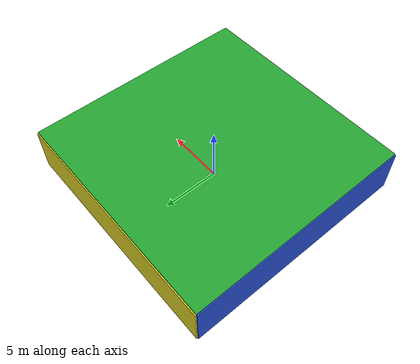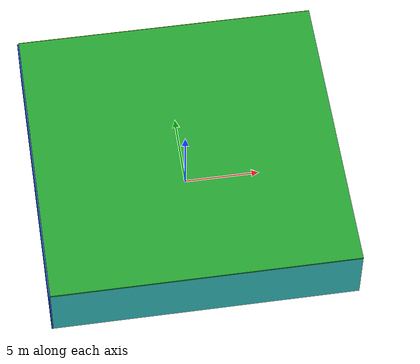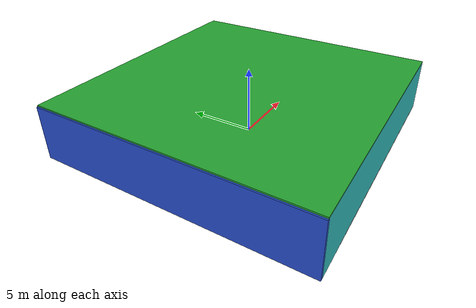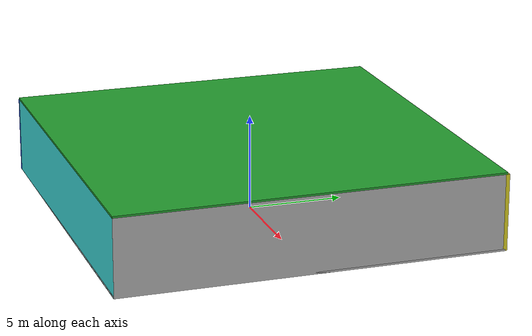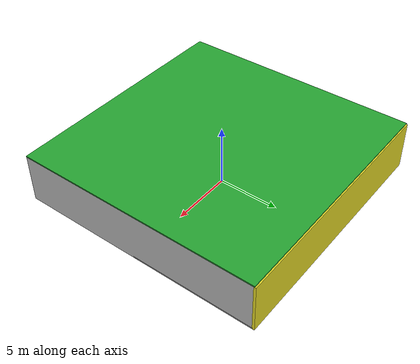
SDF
<sdf version="1.4">
 <world name="default">
  <physics type="ode">
   <max_step_size>0.001</max_step_size>
   <real_time_factor>1</real_time_factor>
   <real_time_update_rate>1000</real_time_update_rate>
   <gravity>0 0 -9.8</gravity>
  </physics>
  <scene><ambient>0.4 0.4 0.4 1</ambient><background>0.7 0.7 0.7 1</background><shadows>1</shadows></scene>
  <model name="Surrounding">
   <static>1</static>
   <link name="Ceiling">
    <collision name="Ceiling_Collision"><geometry><box><size>20 20 0.1</size></box></geometry></collision>
    <visual name="Ceiling_Visual">
     <geometry><box><size>20 20 0.1</size></box></geometry>
     <material>
      <script><uri>file://media/materials/scripts/gazebo.material</uri><name>Gazebo/Green</name></script>
     </material>
    </visual>
    <pose>0 0 4.05 0 0 0</pose>
   </link>
   <link name="Wall_South">
    <collision name="Wall_South_Collision">
     <geometry><box><size>20 0 4</size></box></geometry>
     <pose>0 0 2 0 -0 0</pose>
    </collision>
    <visual name="Wall_South_Visual">
     <pose>0 0 2 0 -0 0</pose>
     <geometry><box><size>20 0 4</size></box></geometry>
     <material>
      <script><uri>file://media/materials/scripts/gazebo.material</uri><name>Gazebo/TurquoiseGlow</name></script>
     </material>
    </visual>
    <velocity_decay><linear>0</linear><angular>0</angular></velocity_decay>
    <pose>0 -10 0 0 -0 0</pose>
   </link>
   <link name="Wall_East">
    <collision name="Wall_21_Collision">
     <geometry><box><size>20 0 4</size></box></geometry>
     <pose>0 0 2 0 -0 0</pose>
    </collision>
    <visual name="Wall_21_Visual">
     <pose>0 0 2 0 -0 0</pose>
     <geometry><box><size>20 0 4</size></box></geometry>
     <material>
      <script><uri>file://media/materials/scripts/gazebo.material</uri><name>Gazebo/PioneerBody</name></script>
     </material>
    </visual>
    <velocity_decay><linear>0</linear><angular>0</angular></velocity_decay>
    <pose>10 0 0 0 -0 1.5708</pose>
   </link>
   <link name="Wall_North">
    <collision name="Wall_22_Collision">
     <geometry><box><size>20 0.2 4</size></box></geometry>
     <pose>0 0 2 0 -0 0</pose>
    </collision>
    <visual name="Wall_22_Visual">
     <pose>0 0 2 0 -0 0</pose>
     <geometry><box><size>20 0.2 4</size></box></geometry>
     <material>
      <script><uri>file://media/materials/scripts/gazebo.material</uri><name>Gazebo/YellowGlow</name></script>
     </material>
    </visual>
    <velocity_decay><linear>0</linear><angular>0</angular></velocity_decay>
    <pose>0 10 0 0 -0 0</pose>
   </link>
   <link name="Wall_West">
    <collision name="Wall_23_Collision">
     <geometry><box><size>20 0.2 4</size></box></geometry>
     <pose>0 0 2 0 -0 0</pose>
    </collision>
    <visual name="Wall_23_Visual">
     <pose>0 0 2 0 -0 0</pose>
     <geometry><box><size>20 0.2 4</size></box></geometry>
     <material>
      <script><uri>file://media/materials/scripts/gazebo.material</uri><name>Gazebo/Blue</name></script>
     </material>
    </visual>
    <velocity_decay><linear>0</linear><angular>0</angular></velocity_decay>
    <pose>-10 0 0 0 0 -1.5708</pose>
   </link>
   <link name="Ground_link">
    <collision name="collision">
     <pose>0 0 .05 0 -0 0</pose>
     <geometry><box><size>20 20 0.1</size></box></geometry>
    </collision>
    <visual name="visual">
     <pose>0 0 .05 0 -0 0</pose>
     <geometry><box><size>20 20 0.1</size></box></geometry>
     <material>
      <script><uri>file://media/materials/scripts/gazebo.material</uri><name>Gazebo/LightOn</name></script>
     </material>
    </visual>
   </link>
   <static>1</static>
  </model>
  <spherical_coordinates>
   <surface_model>EARTH_WGS84</surface_model>
   <latitude_deg>0</latitude_deg>
   <longitude_deg>0</longitude_deg>
   <elevation>0</elevation>
   <heading_deg>0</heading_deg>
  </spherical_coordinates>
  <light name="lightball_0" type="diffuse">
   <diffuse>0.8 0.8 0.8 1</diffuse>
   <specular>0.2 0.2 0.2 1</specular>
   <attenuation>
    <range>100</range>
    <constant>0.7</constant>
    <linear>0.01</linear>
    <quadratic>0.001</quadratic>
   </attenuation>
   <direction>-0.5 0.1 -0.9</direction>
   <pose>8.87913386273 -5.4456801299 3.31941063661 0 0 0</pose>
  </light>
  <light name="lightball_1" type="diffuse">
   <diffuse>0.8 0.8 0.8 1</diffuse>
   <specular>0.2 0.2 0.2 1</specular>
   <attenuation>
    <range>100</range>
    <constant>0.7</constant>
    <linear>0.01</linear>
    <quadratic>0.001</quadratic>
   </attenuation>
   <direction>-0.5 0.1 -0.9</direction>
   <pose>0.792437428599 -3.08320103999 3.23044946112 0 0 0</pose>
  </light>
  <light name="lightball_2" type="diffuse">
   <diffuse>0.8 0.8 0.8 1</diffuse>
   <specular>0.2 0.2 0.2 1</specular>
   <attenuation>
    <range>100</range>
    <constant>0.7</constant>
    <linear>0.01</linear>
    <quadratic>0.001</quadratic>
   </attenuation>
   <direction>-0.5 0.1 -0.9</direction>
   <pose>0.936320937527 -7.09101163712 1.76761406032 0 0 0</pose>
  </light>
  <light name="lightball_3" type="diffuse">
   <diffuse>0.8 0.8 0.8 1</diffuse>
   <specular>0.2 0.2 0.2 1</specular>
   <attenuation>
    <range>100</range>
    <constant>0.7</constant>
    <linear>0.01</linear>
    <quadratic>0.001</quadratic>
   </attenuation>
   <direction>-0.5 0.1 -0.9</direction>
   <pose>0.315114760712 1.23465147337 3.83477372108 0 0 0</pose>
  </light>
  <light name="lightball_4" type="diffuse">
   <diffuse>0.8 0.8 0.8 1</diffuse>
   <specular>0.2 0.2 0.2 1</specular>
   <attenuation>
    <range>100</range>
    <constant>0.7</constant>
    <linear>0.01</linear>
    <quadratic>0.001</quadratic>
   </attenuation>
   <direction>-0.5 0.1 -0.9</direction>
   <pose>7.37589062109 4.83047110266 1.2376219998 0 0 0</pose>
  </light>
  <light name="lightball_5" type="diffuse">
   <diffuse>0.8 0.8 0.8 1</diffuse>
   <specular>0.2 0.2 0.2 1</specular>
   <attenuation>
    <range>100</range>
    <constant>0.7</constant>
    <linear>0.01</linear>
    <quadratic>0.001</quadratic>
   </attenuation>
   <direction>-0.5 0.1 -0.9</direction>
   <pose>-9.08674061554 -9.86673033157 3.37159300555 0 0 0</pose>
  </light>
  <light name="lightball_6" type="diffuse">
   <diffuse>0.8 0.8 0.8 1</diffuse>
   <specular>0.2 0.2 0.2 1</specular>
   <attenuation>
    <range>100</range>
    <constant>0.7</constant>
    <linear>0.01</linear>
    <quadratic>0.001</quadratic>
   </attenuation>
   <direction>-0.5 0.1 -0.9</direction>
   <pose>1.68372091761 8.89027948104 2.71610337922 0 0 0</pose>
  </light>
  <light name="lightball_7" type="diffuse">
   <diffuse>0.8 0.8 0.8 1</diffuse>
   <specular>0.2 0.2 0.2 1</specular>
   <attenuation>
    <range>100</range>
    <constant>0.7</constant>
    <linear>0.01</linear>
    <quadratic>0.001</quadratic>
   </attenuation>
   <direction>-0.5 0.1 -0.9</direction>
   <pose>2.69003780809 -2.48718388497 0.979983776262 0 0 0</pose>
  </light>
  <include><uri>model://cabinet</uri><pose>-5.12850684055 3.76031401673 0 0 0 1.34900052892</pose></include>
  <include>
   <uri>model://construction_cone</uri>
   <pose>4.11938256326 -3.67324794762 0 0 0 1.50378915935</pose>
  </include>
  <include>
   <uri>model://construction_cone</uri>
   <pose>5.41366675611 -2.15334966373 0 0 0 1.58578678506</pose>
  </include>
  <include>
   <uri>model://textured_shapes</uri>
   <pose>5.32845317139 1.56335321407 0 0 0 1.40402851932</pose>
  </include>
  <include><uri>model://table</uri><pose>4.5155478529 7.14747728733 0 0 0 2.70131727371</pose></include>
  <include><uri>model://table</uri><pose>6.35070378222 7.2867870817 0 0 0 1.9591984183</pose></include>
 </world>
</sdf>

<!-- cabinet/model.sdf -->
<sdf version="1.5">
  <model name="cabinet">
    <static>true</static>
    <link name="cabinet_bottom_plate">
      <inertial>
        <pose>0 0 -1 0 0 0</pose>
        <inertia>
          <ixx>2.050000</ixx>
          <ixy>0</ixy>
          <ixz>0</ixz>
          <iyy>2.050000</iyy>
          <iyz>0</iyz>
          <izz>2.050000</izz>
        </inertia>
        <mass>25.000000</mass>
      </inertial>
      <collision name="cabinet_bottom_plate_geom">
        <pose>0 0 0.010000 0 0 0</pose>
        <geometry>
          <box>
            <size>0.450000 0.450000 0.020000</size>
          </box>
        </geometry>
      </collision>
      <visual name="cabinet_bottom_plate_geom_visual">
        <pose>0 0 0.010000 0 0 0</pose>
        <geometry>
          <box>
            <size>0.450000 0.450000 0.020000</size>
          </box>
        </geometry>
        <material>
          <script>
            <uri>model://media/materials/scripts/gazebo.material</uri>
            <name>Gazebo/Wood</name>
          </script>
        </material>
      </visual>
      <collision name="cabinet_bottom_plate_geom_cabinet_back_plate">
        <pose>0.235000 0 0.510000 0 0 0</pose>
        <geometry>
          <box>
            <size>0.020000 0.450000 1.020000</size>
          </box>
        </geometry>
      </collision>
      <visual name="cabinet_bottom_plate_geom_cabinet_back_plate_visual">
        <pose>0.235000 0 0.510000 0 0 0</pose>
        <geometry>
          <box>
            <size>0.020000 0.450000 1.020000</size>
          </box>
        </geometry>
        <material>
          <script>
            <uri>model://media/materials/scripts/gazebo.material</uri>
            <name>Gazebo/Wood</name>
          </script>
        </material>
      </visual>
      <collision name="cabinet_bottom_plate_geom_cabinet_left_plate">
        <pose>0 0.235000 0.510000 0 0 0</pose>
        <geometry>
          <box>
            <size>0.450000 0.020000 1.020000</size>
          </box>
        </geometry>
      </collision>
      <visual name="cabinet_bottom_plate_geom_cabinet_left_plate_visual">
        <pose>0 0.235000 0.510000 0 0 0</pose>
        <geometry>
          <box>
            <size>0.450000 0.020000 1.020000</size>
          </box>
        </geometry>
        <material>
          <script>
            <uri>model://media/materials/scripts/gazebo.material</uri>
            <name>Gazebo/Wood</name>
          </script>
        </material>
      </visual>
      <collision name="cabinet_bottom_plate_geom_cabinet_middle_plate">
        <pose>0 0 0.510000 0 0 0</pose>
        <geometry>
          <box>
            <size>0.450000 0.450000 0.020000</size>
          </box>
        </geometry>
      </collision>
      <visual name="cabinet_bottom_plate_geom_cabinet_middle_plate_visual">
        <pose>0 0 0.510000 0 0 0</pose>
        <geometry>
          <box>
            <size>0.450000 0.450000 0.020000</size>
          </box>
        </geometry>
        <material>
          <script>
            <uri>model://media/materials/scripts/gazebo.material</uri>
            <name>Gazebo/Wood</name>
          </script>
        </material>
      </visual>
      <collision name="cabinet_bottom_plate_geom_cabinet_right_plate">
        <pose>0 -0.235000 0.510000 0 0 0</pose>
        <geometry>
          <box>
            <size>0.450000 0.020000 1.020000</size>
          </box>
        </geometry>
      </collision>
      <visual name="cabinet_bottom_plate_geom_cabinet_right_plate_visual">
        <pose>0 -0.235000 0.510000 0 0 0</pose>
        <geometry>
          <box>
            <size>0.450000 0.020000 1.020000</size>
          </box>
        </geometry>
        <material>
          <script>
            <uri>model://media/materials/scripts/gazebo.material</uri>
            <name>Gazebo/Wood</name>
          </script>
        </material>
      </visual>
      <collision name="cabinet_bottom_plate_geom_cabinet_top_plate">
        <pose>0 0 1.010000 0 0 0</pose>
        <geometry>
          <box>
            <size>0.450000 0.450000 0.020000</size>
          </box>
        </geometry>
      </collision>
      <visual name="cabinet_bottom_plate_geom_cabinet_top_plate_visual">
        <pose>0 0 1.010000 0 0 0</pose>
        <geometry>
          <box>
            <size>0.450000 0.450000 0.020000</size>
          </box>
        </geometry>
        <material>
          <script>
            <uri>model://media/materials/scripts/gazebo.material</uri>
            <name>Gazebo/Wood</name>
          </script>
        </material>
      </visual>
    </link>
  </model>
</sdf>

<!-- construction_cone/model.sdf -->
<sdf version="1.5">
  <model name="Construction Cone">
    <link name="link">
      <collision name="collision">
        <geometry>
          <mesh>
            <scale>10 10 10</scale>
            <uri>file://isr-testbed/construction_cone/meshes/construction_cone.dae</uri>
          </mesh>
        </geometry>
      </collision>
      <visual name="visual">
        <geometry>
          <mesh>
            <scale>10 10 10</scale>
            <uri>file://isr-testbed/construction_cone/meshes/construction_cone.dae</uri>
          </mesh>
        </geometry>
      </visual>
    </link>
  </model>
</sdf>

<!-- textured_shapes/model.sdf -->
<sdf version="1.6">
  <model name="textured_shapes">
    <pose>0 0 0.5 0 0 0</pose>
    <link name="box">
      <pose>0 -1.5 0 0 0 0</pose>
      <collision name="collision">
        <geometry>
          <box>
            <size>1 1 1</size>
          </box>
        </geometry>
      </collision>
      <visual name="visual">
        <geometry>
          <box>
            <size>1 1 1</size>
          </box>
        </geometry>
        <material>
          <script>
            <uri>model://../model_source/models/textured_shapes/materials/scripts</uri>
            <uri>model://../model_source/models/textured_shapes/materials/textures</uri>
            <name>TexturedShape/Squares</name>
          </script>
        </material>
      </visual>
    </link>
    <link name="sphere">
      <collision name="collision">
        <geometry>
          <sphere>
            <radius>0.5</radius>
          </sphere>
        </geometry>
      </collision>
      <visual name="visual">
        <geometry>
          <sphere>
            <radius>0.5</radius>
          </sphere>
        </geometry>
        <material>
          <script>
            <uri>model://../model_source/models/textured_shapes/materials/scripts</uri>
            <uri>model://../model_source/models/textured_shapes/materials/textures</uri>
            <name>TexturedShape/Squares</name>
          </script>
        </material>
      </visual>
    </link>
    <link name="cylinder">
      <pose>0 1.5 0 0 0 0</pose>
      <collision name="collision">
        <geometry>
          <cylinder>
            <radius>0.5</radius>
            <length>1</length>
          </cylinder>
        </geometry>
      </collision>
      <visual name="visual">
        <geometry>
          <cylinder>
            <radius>0.5</radius>
            <length>1</length>
          </cylinder>
        </geometry>
        <material>
          <script>
            <uri>model://../model_source/models/textured_shapes/materials/scripts</uri>
            <uri>model://../model_source/models/textured_shapes/materials/textures</uri>
            <name>TexturedShape/Squares</name>
          </script>
        </material>
      </visual>
    </link>
  </model>
</sdf>

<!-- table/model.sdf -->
<sdf version="1.5">
  <model name="table">
    <static>true</static>
    <link name="link">
      <collision name="surface">
        <pose>0 0 1.0 0 0 0</pose>
        <geometry>
          <box>
            <size>1.5 0.8 0.03</size>
          </box>
        </geometry>
        <surface>
          <friction>
            <ode>
              <mu>0.6</mu>
              <mu2>0.6</mu2>
            </ode>
          </friction>
        </surface>
      </collision>
      <visual name="visual1">
        <pose>0 0 1.0 0 0 0</pose>
        <geometry>
          <box>
            <size>1.5 0.8 0.03</size>
          </box>
        </geometry>
        <material>
          <script>
            <uri>model://media/materials/scripts/gazebo.material</uri>
            <name>Gazebo/Wood</name>
          </script>
        </material>
      </visual>
      <collision name="front_left_leg">
        <pose>0.68 0.38 0.5 0 0 0</pose>
        <geometry>
          <cylinder>
            <radius>0.02</radius>
            <length>1.0</length>
          </cylinder>
        </geometry>
      </collision>
      <visual name="front_left_leg">
        <pose>0.68 0.38 0.5 0 0 0</pose>
        <geometry>
          <cylinder>
            <radius>0.02</radius>
            <length>1.0</length>
          </cylinder>
        </geometry>
        <material>
          <script>
            <uri>model://media/materials/scripts/gazebo.material</uri>
            <name>Gazebo/Grey</name>
          </script>
        </material>
      </visual>
      <collision name="front_right_leg">
        <pose>0.68 -0.38 0.5 0 0 0</pose>
        <geometry>
          <cylinder>
            <radius>0.02</radius>
            <length>1.0</length>
          </cylinder>
        </geometry>
      </collision>
      <visual name="front_right_leg">
        <pose>0.68 -0.38 0.5 0 0 0</pose>
        <geometry>
          <cylinder>
            <radius>0.02</radius>
            <length>1.0</length>
          </cylinder>
        </geometry>
        <material>
          <script>
            <uri>model://media/materials/scripts/gazebo.material</uri>
            <name>Gazebo/Grey</name>
          </script>
        </material>
      </visual>
      <collision name="back_right_leg">
        <pose>-0.68 -0.38 0.5 0 0 0</pose>
        <geometry>
          <cylinder>
            <radius>0.02</radius>
            <length>1.0</length>
          </cylinder>
        </geometry>
      </collision>
      <visual name="back_right_leg">
        <pose>-0.68 -0.38 0.5 0 0 0</pose>
        <geometry>
          <cylinder>
            <radius>0.02</radius>
            <length>1.0</length>
          </cylinder>
        </geometry>
        <material>
          <script>
            <uri>model://media/materials/scripts/gazebo.material</uri>
            <name>Gazebo/Grey</name>
          </script>
        </material>
      </visual>
      <collision name="back_left_leg">
        <pose>-0.68 0.38 0.5 0 0 0</pose>
        <geometry>
          <cylinder>
            <radius>0.02</radius>
            <length>1.0</length>
          </cylinder>
        </geometry>
      </collision>
      <visual name="back_left_leg">
        <pose>-0.68 0.38 0.5 0 0 0</pose>
        <geometry>
          <cylinder>
            <radius>0.02</radius>
            <length>1.0</length>
          </cylinder>
        </geometry>
        <material>
          <script>
            <uri>model://media/materials/scripts/gazebo.material</uri>
            <name>Gazebo/Grey</name>
          </script>
        </material>
      </visual>
    </link>
  </model>
</sdf>
